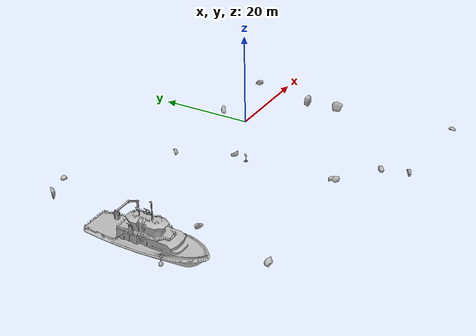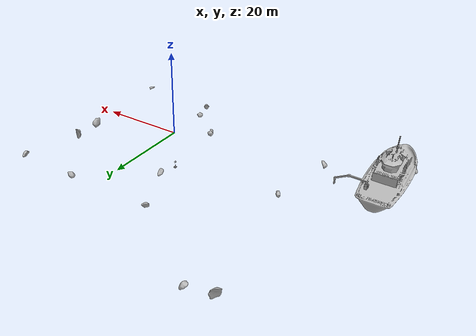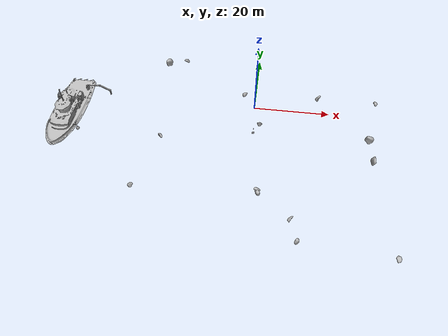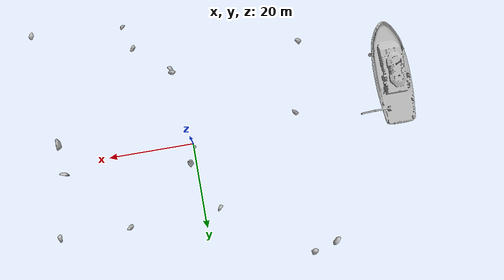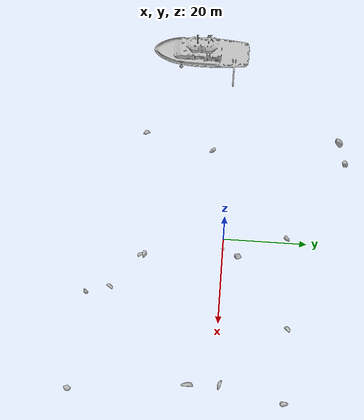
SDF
<sdf version="1.6">
 <world name="shipwreck">
  <physics type="ode">
   <max_step_size>0.01</max_step_size>
   <real_time_factor>1</real_time_factor>
   <real_time_update_rate>100</real_time_update_rate>
  </physics>
  <spherical_coordinates>
   <latitude_deg>-12.9378</latitude_deg>
   <longitude_deg>-38.5154</longitude_deg>
   <heading_deg>90</heading_deg>
  </spherical_coordinates>
  <model name="nwu">
   <static>true</static>
   <link name="base"/>
   <link name="orientation"/>
   <joint name="__joint_orientation" type="fixed"><child>orientation</child><parent>base</parent></joint>
  </model>
  <model name="surface"><static>true</static></model>
  <model name="usbl"><static>true</static></model>
  <include><uri>model://vessel</uri><pose>-49 -8 0 0 0 3.14</pose></include>
  <include><uri>model://apriltag_support</uri><pose>0.05 0 -9.95 0 0 -1.57</pose></include>
  <physics type="ode">
   <max_step_size>0.01</max_step_size>
   <real_time_factor>1</real_time_factor>
   <real_time_update_rate>100</real_time_update_rate>
  </physics>
  <plugin name="underwater" filename="libgazebo_underwater.so">
   <model_name>flat_fish</model_name>
   <link_name>flat_fish_body</link_name>
   <drag_coefficient>5 7.5 12.5</drag_coefficient>
   <center_of_buoyancy>0 0 0.1</center_of_buoyancy>
   <buoyancy>18</buoyancy>
  </plugin>
  <include>
   <uri>model://subsea_rock_1</uri>
   <name>subsea_rock_1_-25.13_30.95</name>
   <pose>-25.13 30.95 -10 0.33 5.62 3.51</pose>
  </include>
  <include>
   <uri>model://subsea_rock_3</uri>
   <name>subsea_rock_3_-3.78_16.17</name>
   <pose>-3.78 16.17 -10 5.51 4.97 3.1</pose>
  </include>
  <include>
   <uri>model://subsea_rock_1</uri>
   <name>subsea_rock_1_-30.67_-22.40</name>
   <pose>-30.67 -22.40 -10 5.44 0.68 2.33</pose>
  </include>
  <include>
   <uri>model://subsea_rock_3</uri>
   <name>subsea_rock_3_2.58_-19.76</name>
   <pose>2.58 -19.76 -10 3.25 2.2 4.68</pose>
  </include>
  <include>
   <uri>model://subsea_rock_1</uri>
   <name>subsea_rock_1_19.2_17.18</name>
   <pose>19.2 17.18 -10 4.22 1.9 0.46</pose>
  </include>
  <include>
   <uri>model://subsea_rock_3</uri>
   <name>subsea_rock_3_36.69_-35.19</name>
   <pose>36.69 -35.19 -10 2.93 2.6 2.70</pose>
  </include>
  <include>
   <uri>model://subsea_rock_3</uri>
   <name>subsea_rock_3_2.81_-20.82</name>
   <pose>2.81 -20.82 -10 0.47 1.20 4.28</pose>
  </include>
  <include>
   <uri>model://subsea_rock_2</uri>
   <name>subsea_rock_2_-31.0_29.16</name>
   <pose>-31.0 29.16 -10 1.15 1.3 0.4</pose>
  </include>
  <include>
   <uri>model://subsea_rock_2</uri>
   <name>subsea_rock_2_33.90_-6.38</name>
   <pose>33.90 -6.38 -10 4.47 3.43 1.60</pose>
  </include>
  <include>
   <uri>model://subsea_rock_1</uri>
   <name>subsea_rock_1_1.71_3.83</name>
   <pose>1.71 3.83 -10 2.75 5.71 5.18</pose>
  </include>
  <include>
   <uri>model://subsea_rock_3</uri>
   <name>subsea_rock_3_11.44_-27.64</name>
   <pose>11.44 -27.64 -10 5.2 1.17 1.51</pose>
  </include>
  <include>
   <uri>model://subsea_rock_2</uri>
   <name>subsea_rock_2_33.5_1.29</name>
   <pose>33.5 1.29 -10 4.48 1.51 2.62</pose>
  </include>
  <include>
   <uri>model://subsea_rock_3</uri>
   <name>subsea_rock_3_-26.66_-4.30</name>
   <pose>-26.66 -4.30 -10 2.49 1.86 3.30</pose>
  </include>
  <include>
   <uri>model://subsea_rock_3</uri>
   <name>subsea_rock_3_13.18_-33.57</name>
   <pose>13.18 -33.57 -10 1.37 0.28 0.73</pose>
  </include>
  <include>
   <uri>model://subsea_rock_1</uri>
   <name>subsea_rock_1_36.92_16.89</name>
   <pose>36.92 16.89 -10 5.29 5.57 4.46</pose>
  </include>
 </world>
</sdf>

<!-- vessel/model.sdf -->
<sdf version="1.4">
    <model name="vessel">
        <pose>0 0 0 0 0 0</pose>
        <static>true</static>
        <link name="vessel_body">
            <visual name="visual">
                <geometry>
                    <mesh>
                        <uri>model://vessel/visual.osgb</uri>
                    </mesh>
                </geometry>
            </visual>
            <collision name="collision">
                <geometry>
                    <mesh>
                        <uri>model://vessel/collision.stl</uri>
                    </mesh>
                </geometry>
            </collision>
            <inertial>
                <pose>0 0 -1 0 0 0</pose>
                <inertia>
                    <ixx>0.0</ixx>
                    <ixy>0</ixy>
                    <ixz>0.0</ixz>
                    <iyy>0.0</iyy>
                    <iyz>0</iyz>
                    <izz>0.0</izz>
                </inertia>
                <mass>1.0</mass>
            </inertial>
        </link>
    </model>
</sdf>

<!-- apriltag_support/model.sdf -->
<sdf version="1.4">
    <model name="apriltag_support">
        <pose>0 0 0 0 0 0</pose>
        <static>true</static>
        <link name="apriltag_support_body">
            <visual name="visual">
                <geometry>
                    <mesh>
                        <uri>model://apriltag_support/visual.osgb</uri>
                    </mesh>
                </geometry>
            </visual>
            <collision name="collision">
                <geometry>
                    <mesh>
                        <uri>model://apriltag_support/collision.stl</uri>
                    </mesh>
                </geometry>
            </collision>
            <inertial>
                <pose>0 0 -1 0 0 0</pose>
                <inertia>
                    <ixx>0.0</ixx>
                    <ixy>0</ixy>
                    <ixz>0.0</ixz>
                    <iyy>0.0</iyy>
                    <iyz>0</iyz>
                    <izz>0.0</izz>
                </inertia>
                <mass>1.0</mass>
            </inertial>
        </link>
    </model>
</sdf>

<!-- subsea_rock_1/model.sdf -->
<sdf version="1.4">
    <model name="subsea_rock_1">
        <pose>0 0 0 0 0 0</pose>
        <static>true</static>
        <link name="subsea_rock_1_body">
            <visual name="visual">
                <geometry>
                    <mesh>
                        <uri>model://subsea_rock_1/visual.osgb</uri>
                    </mesh>
                </geometry>
            </visual>
            <collision name="collision">
                <geometry>
                    <mesh>
                        <uri>model://subsea_rock_1/collision.stl</uri>
                    </mesh>
                </geometry>
            </collision>
            <inertial>
                <pose>0 0 -1 0 0 0</pose>
                <inertia>
                    <ixx>0.0</ixx>
                    <ixy>0</ixy>
                    <ixz>0.0</ixz>
                    <iyy>0.0</iyy>
                    <iyz>0</iyz>
                    <izz>0.0</izz>
                </inertia>
                <mass>1.0</mass>
            </inertial>
        </link>
    </model>
</sdf>

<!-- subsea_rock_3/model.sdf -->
<sdf version="1.4">
    <model name="subsea_rock_3">
        <pose>0 0 0 0 0 0</pose>
        <static>true</static>
        <link name="subsea_rock_3_body">
            <visual name="visual">
                <geometry>
                    <mesh>
                        <uri>model://subsea_rock_3/visual.osgb</uri>
                    </mesh>
                </geometry>
            </visual>
            <collision name="collision">
                <geometry>
                    <mesh>
                        <uri>model://subsea_rock_3/collision.stl</uri>
                    </mesh>
                </geometry>
            </collision>
            <inertial>
                <pose>0 0 -1 0 0 0</pose>
                <inertia>
                    <ixx>0.0</ixx>
                    <ixy>0</ixy>
                    <ixz>0.0</ixz>
                    <iyy>0.0</iyy>
                    <iyz>0</iyz>
                    <izz>0.0</izz>
                </inertia>
                <mass>1.0</mass>
            </inertial>
        </link>
    </model>
</sdf>

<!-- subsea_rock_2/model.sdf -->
<sdf version="1.4">
    <model name="subsea_rock_2">
        <pose>0 0 0 0 0 0</pose>
        <static>true</static>
        <link name="subsea_rock_2_body">
            <visual name="visual">
                <geometry>
                    <mesh>
                        <uri>model://subsea_rock_2/visual.osgb</uri>
                    </mesh>
                </geometry>
            </visual>
            <collision name="collision">
                <geometry>
                    <mesh>
                        <uri>model://subsea_rock_2/collision.stl</uri>
                    </mesh>
                </geometry>
            </collision>
            <inertial>
                <pose>0 0 -1 0 0 0</pose>
                <inertia>
                    <ixx>0.0</ixx>
                    <ixy>0</ixy>
                    <ixz>0.0</ixz>
                    <iyy>0.0</iyy>
                    <iyz>0</iyz>
                    <izz>0.0</izz>
                </inertia>
                <mass>1.0</mass>
            </inertial>
        </link>
    </model>
</sdf>
